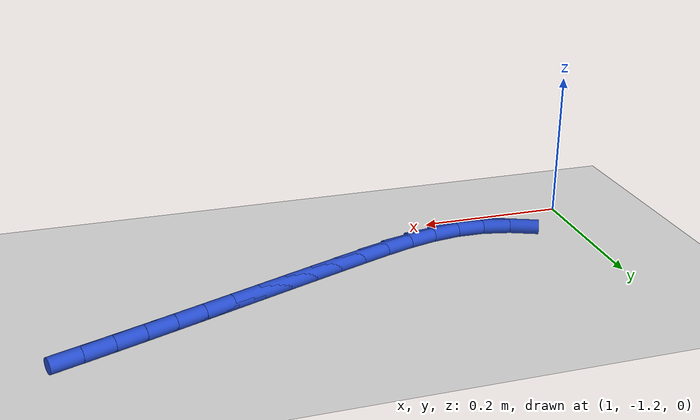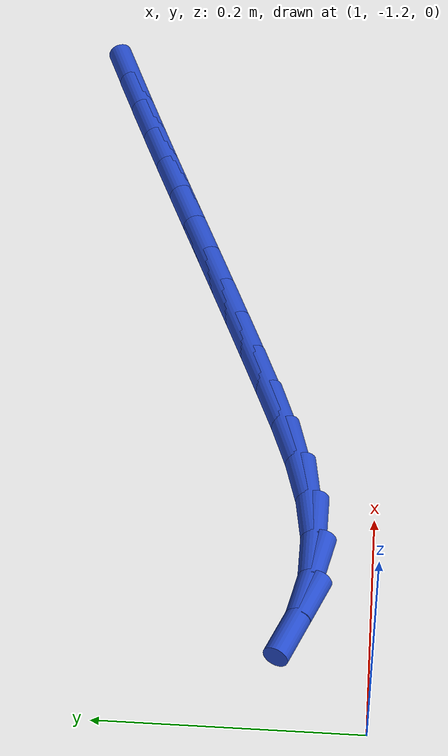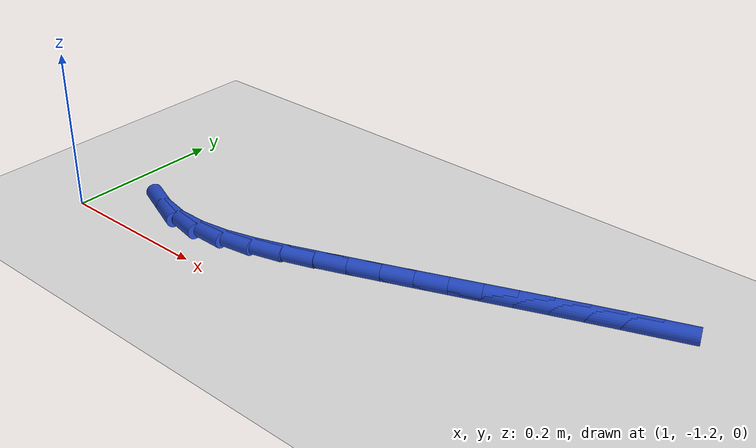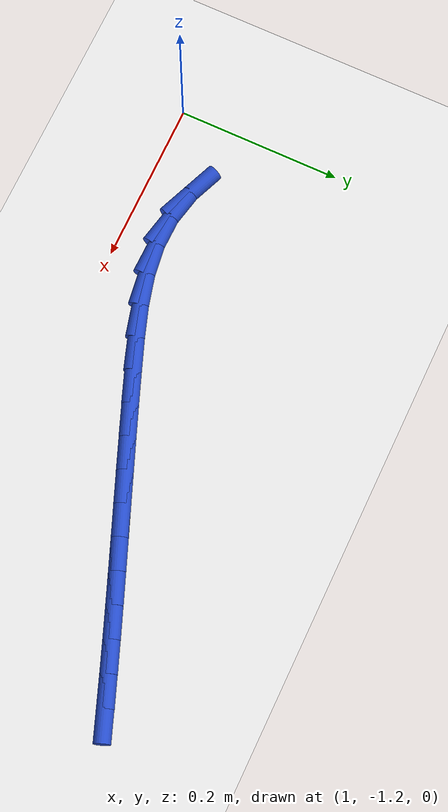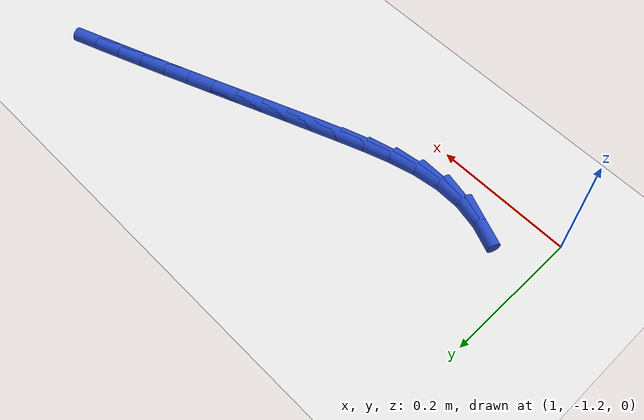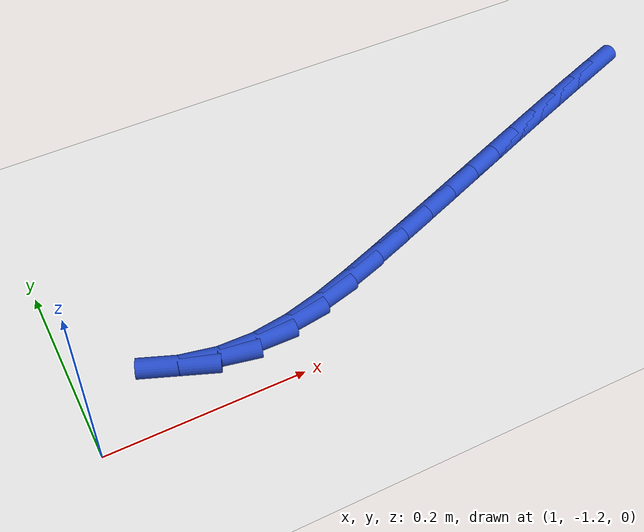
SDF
<sdf version="1.6">
 <world name="default">
  <model name="ground_plane">
   <static>1</static>
   <link name="link">
    <collision name="collision">
     <geometry><plane><normal>0 0 1</normal><size>100 100</size></plane></geometry>
     <surface><friction><ode><mu>100</mu><mu2>50</mu2></ode></friction></surface>
    </collision>
    <visual name="visual">
     <cast_shadows>0</cast_shadows>
     <geometry><plane><normal>0 0 1</normal><size>100 100</size></plane></geometry>
     <material>
      <script><uri>file://media/materials/scripts/gazebo.material</uri><name>Gazebo/WhiteGlow</name></script>
     </material>
    </visual>
   </link>
  </model>
  <model name="line">
   <link name="link_133">
    <pose>1.680788932939871 -0.9717566756663043 0.01 0 1.57 0.3596980051487828</pose>
    <collision name="collision">
     <geometry><cylinder><radius>0.01</radius><length>0.08</length></cylinder></geometry>
    </collision>
    <visual name="visual">
     <material>
      <script><name>Gazebo/Blue</name><uri>file://media/materials/scripts/gazebo.material</uri></script>
     </material>
     <geometry><cylinder><radius>0.01</radius><length>0.08</length></cylinder></geometry>
    </visual>
   </link>
   <link name="link_134">
    <pose>1.6452851227114023 -0.9851081714246678 0.01 0 1.57 0.3655749115155499</pose>
    <collision name="collision">
     <geometry><cylinder><radius>0.01</radius><length>0.08</length></cylinder></geometry>
    </collision>
    <visual name="visual">
     <material>
      <script><name>Gazebo/Blue</name><uri>file://media/materials/scripts/gazebo.material</uri></script>
     </material>
     <geometry><cylinder><radius>0.01</radius><length>0.08</length></cylinder></geometry>
    </visual>
   </link>
   <link name="link_135">
    <pose>1.6098175855967798 -0.9986844729420886 0.01 0 1.57 0.3702179970570901</pose>
    <collision name="collision">
     <geometry><cylinder><radius>0.01</radius><length>0.08</length></cylinder></geometry>
    </collision>
    <visual name="visual">
     <material>
      <script><name>Gazebo/Blue</name><uri>file://media/materials/scripts/gazebo.material</uri></script>
     </material>
     <geometry><cylinder><radius>0.01</radius><length>0.08</length></cylinder></geometry>
    </visual>
   </link>
   <link name="link_136">
    <pose>1.5743392028658698 -1.012454129087821 0.01 0 1.57 0.37362284994724326</pose>
    <collision name="collision">
     <geometry><cylinder><radius>0.01</radius><length>0.08</length></cylinder></geometry>
    </collision>
    <visual name="visual">
     <material>
      <script><name>Gazebo/Blue</name><uri>file://media/materials/scripts/gazebo.material</uri></script>
     </material>
     <geometry><cylinder><radius>0.01</radius><length>0.08</length></cylinder></geometry>
    </visual>
   </link>
   <link name="link_137">
    <pose>1.538802855788537 -1.0263856887311187 0.01 0 1.57 0.37579166034601263</pose>
    <collision name="collision">
     <geometry><cylinder><radius>0.01</radius><length>0.08</length></cylinder></geometry>
    </collision>
    <visual name="visual">
     <material>
      <script><name>Gazebo/Blue</name><uri>file://media/materials/scripts/gazebo.material</uri></script>
     </material>
     <geometry><cylinder><radius>0.01</radius><length>0.08</length></cylinder></geometry>
    </visual>
   </link>
   <link name="link_138">
    <pose>1.5031614256346477 -1.0404477007412356 0.01 0 1.57 0.37673295208108254</pose>
    <collision name="collision">
     <geometry><cylinder><radius>0.01</radius><length>0.08</length></cylinder></geometry>
    </collision>
    <visual name="visual">
     <material>
      <script><name>Gazebo/Blue</name><uri>file://media/materials/scripts/gazebo.material</uri></script>
     </material>
     <geometry><cylinder><radius>0.01</radius><length>0.08</length></cylinder></geometry>
    </visual>
   </link>
   <link name="link_139">
    <pose>1.4673677936740663 -1.0546087139874258 0.01 0 1.57 0.37646129508138054</pose>
    <collision name="collision">
     <geometry><cylinder><radius>0.01</radius><length>0.08</length></cylinder></geometry>
    </collision>
    <visual name="visual">
     <material>
      <script><name>Gazebo/Blue</name><uri>file://media/materials/scripts/gazebo.material</uri></script>
     </material>
     <geometry><cylinder><radius>0.01</radius><length>0.08</length></cylinder></geometry>
    </visual>
   </link>
   <link name="link_140">
    <pose>1.4313748411766594 -1.068837277338943 0.01 0 1.57 0.37499700466591174</pose>
    <collision name="collision">
     <geometry><cylinder><radius>0.01</radius><length>0.08</length></cylinder></geometry>
    </collision>
    <visual name="visual">
     <material>
      <script><name>Gazebo/Blue</name><uri>file://media/materials/scripts/gazebo.material</uri></script>
     </material>
     <geometry><cylinder><radius>0.01</radius><length>0.08</length></cylinder></geometry>
    </visual>
   </link>
   <link name="link_141">
    <pose>1.3951354494122927 -1.083101939665041 0.01 0 1.57 0.3723658313412846</pose>
    <collision name="collision">
     <geometry><cylinder><radius>0.01</radius><length>0.08</length></cylinder></geometry>
    </collision>
    <visual name="visual">
     <material>
      <script><name>Gazebo/Blue</name><uri>file://media/materials/scripts/gazebo.material</uri></script>
     </material>
     <geometry><cylinder><radius>0.01</radius><length>0.08</length></cylinder></geometry>
    </visual>
   </link>
   <link name="link_142">
    <pose>1.35860249965083 -1.097371249834974 0.01 0 1.57 0.3685986425849308</pose>
    <collision name="collision">
     <geometry><cylinder><radius>0.01</radius><length>0.08</length></cylinder></geometry>
    </collision>
    <visual name="visual">
     <material>
      <script><name>Gazebo/Blue</name><uri>file://media/materials/scripts/gazebo.material</uri></script>
     </material>
     <geometry><cylinder><radius>0.01</radius><length>0.08</length></cylinder></geometry>
    </visual>
   </link>
   <link name="link_143">
    <pose>1.3217288731621382 -1.1116137567179962 0.01 0 1.57 0.361363263510402</pose>
    <collision name="collision">
     <geometry><cylinder><radius>0.01</radius><length>0.08</length></cylinder></geometry>
    </collision>
    <visual name="visual">
     <material>
      <script><name>Gazebo/Blue</name><uri>file://media/materials/scripts/gazebo.material</uri></script>
     </material>
     <geometry><cylinder><radius>0.01</radius><length>0.08</length></cylinder></geometry>
    </visual>
   </link>
   <link name="link_144">
    <pose>1.2844772851998079 -1.1256933691815836 0.01 0 1.57 0.3290650554515064</pose>
    <collision name="collision">
     <geometry><cylinder><radius>0.01</radius><length>0.08</length></cylinder></geometry>
    </collision>
    <visual name="visual">
     <material>
      <script><name>Gazebo/Blue</name><uri>file://media/materials/scripts/gazebo.material</uri></script>
     </material>
     <geometry><cylinder><radius>0.01</radius><length>0.08</length></cylinder></geometry>
    </visual>
   </link>
   <link name="link_145">
    <pose>1.246899597510419 -1.1385254192555228 0.01 0 1.57 0.25846997470817135</pose>
    <collision name="collision">
     <geometry><cylinder><radius>0.01</radius><length>0.08</length></cylinder></geometry>
    </collision>
    <visual name="visual">
     <material>
      <script><name>Gazebo/Blue</name><uri>file://media/materials/scripts/gazebo.material</uri></script>
     </material>
     <geometry><cylinder><radius>0.01</radius><length>0.08</length></cylinder></geometry>
    </visual>
   </link>
   <link name="link_146">
    <pose>1.2090951243299557 -1.14852031352798 0.01 0 1.57 0.14563267175195627</pose>
    <collision name="collision">
     <geometry><cylinder><radius>0.01</radius><length>0.08</length></cylinder></geometry>
    </collision>
    <visual name="visual">
     <material>
      <script><name>Gazebo/Blue</name><uri>file://media/materials/scripts/gazebo.material</uri></script>
     </material>
     <geometry><cylinder><radius>0.01</radius><length>0.08</length></cylinder></geometry>
    </visual>
   </link>
   <link name="link_147">
    <pose>1.1711636208075422 -1.1540837669837083 0.01 0 1.57 -0.012177671165150162</pose>
    <collision name="collision">
     <geometry><cylinder><radius>0.01</radius><length>0.08</length></cylinder></geometry>
    </collision>
    <visual name="visual">
     <material>
      <script><name>Gazebo/Blue</name><uri>file://media/materials/scripts/gazebo.material</uri></script>
     </material>
     <geometry><cylinder><radius>0.01</radius><length>0.08</length></cylinder></geometry>
    </visual>
   </link>
   <link name="link_148">
    <pose>1.1332048420923009 -1.1536214946074594 0.01 0 1.57 -0.20687179775798553</pose>
    <collision name="collision">
     <geometry><cylinder><radius>0.01</radius><length>0.08</length></cylinder></geometry>
    </collision>
    <visual name="visual">
     <material>
      <script><name>Gazebo/Blue</name><uri>file://media/materials/scripts/gazebo.material</uri></script>
     </material>
     <geometry><cylinder><radius>0.01</radius><length>0.08</length></cylinder></geometry>
    </visual>
   </link>
   <link name="link_149">
    <pose>1.0953187146728498 -1.145670170240469 0.01 0 1.57 -0.3802020012786656</pose>
    <collision name="collision">
     <geometry><cylinder><radius>0.01</radius><length>0.08</length></cylinder></geometry>
    </collision>
    <visual name="visual">
     <material>
      <script><name>Gazebo/Blue</name><uri>file://media/materials/scripts/gazebo.material</uri></script>
     </material>
     <geometry><cylinder><radius>0.01</radius><length>0.08</length></cylinder></geometry>
    </visual>
   </link>
  </model>
 </world>
</sdf>
